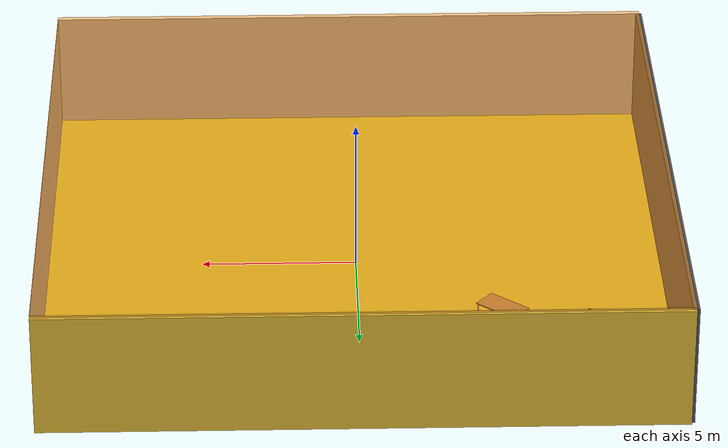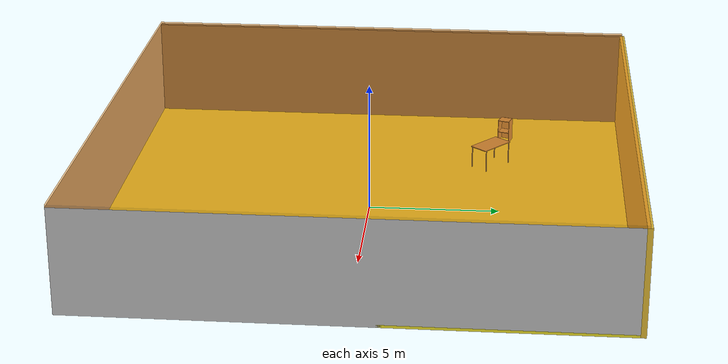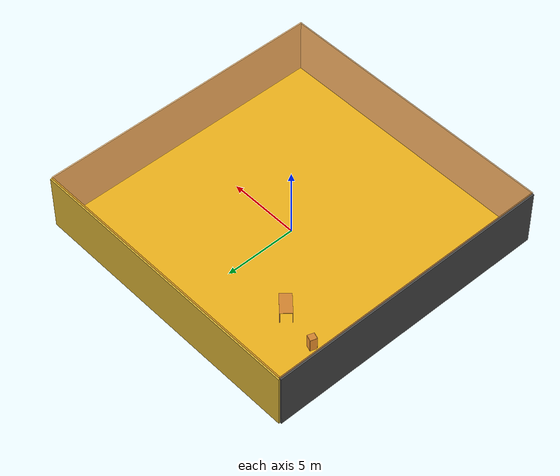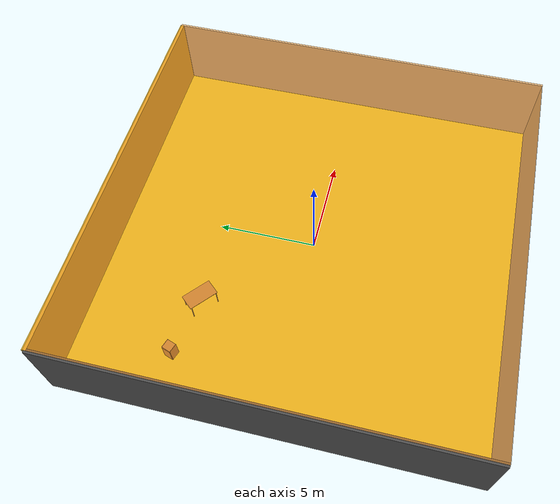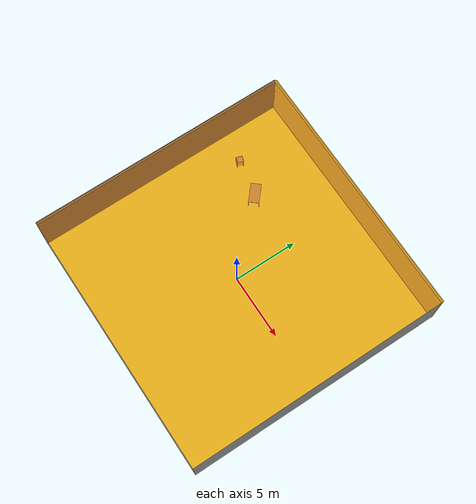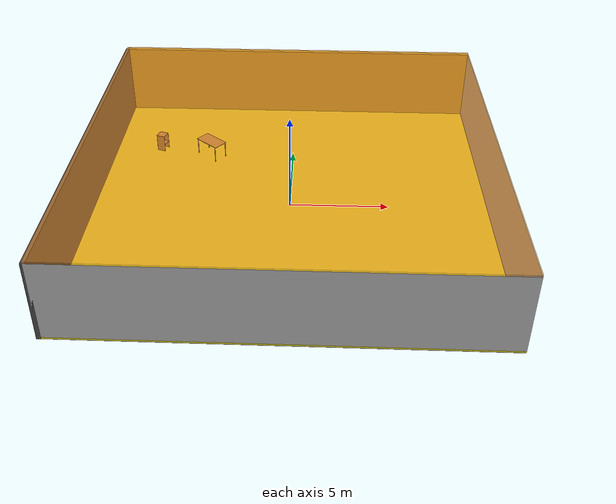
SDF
<sdf version="1.4">
 <world name="default">
  <physics type="ode">
   <max_step_size>0.001</max_step_size>
   <real_time_factor>1</real_time_factor>
   <real_time_update_rate>1000</real_time_update_rate>
   <gravity>0 0 -9.8</gravity>
  </physics>
  <scene><ambient>0.4 0.4 0.4 1</ambient><background>0.7 0.7 0.7 1</background><shadows>1</shadows></scene>
  <model name="Surrounding">
   <static>1</static>
   <link name="Ceiling">
    <collision name="Ceiling_Collision"><geometry><box><size>20 20 0.1</size></box></geometry></collision>
    <visual name="Ceiling_Visual">
     <geometry><box><size>20 20 0.1</size></box></geometry>
     <material>
      <script>
       <uri>file://media/materials/scripts/gazebo.material</uri>
       <name>Gazebo/OrangeTransparent</name>
      </script>
     </material>
    </visual>
    <pose>0 0 4.05 0 0 0</pose>
   </link>
   <link name="Wall_South">
    <collision name="Wall_South_Collision">
     <geometry><box><size>20 0 4</size></box></geometry>
     <pose>0 0 2 0 -0 0</pose>
    </collision>
    <visual name="Wall_South_Visual">
     <pose>0 0 2 0 -0 0</pose>
     <geometry><box><size>20 0 4</size></box></geometry>
     <material>
      <script><uri>file://media/materials/scripts/gazebo.material</uri><name>Gazebo/LightOff</name></script>
     </material>
    </visual>
    <velocity_decay><linear>0</linear><angular>0</angular></velocity_decay>
    <pose>0 -10 0 0 -0 0</pose>
   </link>
   <link name="Wall_East">
    <collision name="Wall_21_Collision">
     <geometry><box><size>20 0 4</size></box></geometry>
     <pose>0 0 2 0 -0 0</pose>
    </collision>
    <visual name="Wall_21_Visual">
     <pose>0 0 2 0 -0 0</pose>
     <geometry><box><size>20 0 4</size></box></geometry>
     <material>
      <script><uri>file://media/materials/scripts/gazebo.material</uri><name>Gazebo/CloudySky</name></script>
     </material>
    </visual>
    <velocity_decay><linear>0</linear><angular>0</angular></velocity_decay>
    <pose>10 0 0 0 -0 1.5708</pose>
   </link>
   <link name="Wall_North">
    <collision name="Wall_22_Collision">
     <geometry><box><size>20 0.2 4</size></box></geometry>
     <pose>0 0 2 0 -0 0</pose>
    </collision>
    <visual name="Wall_22_Visual">
     <pose>0 0 2 0 -0 0</pose>
     <geometry><box><size>20 0.2 4</size></box></geometry>
     <material>
      <script><uri>file://media/materials/scripts/gazebo.material</uri><name>Gazebo/Gold</name></script>
     </material>
    </visual>
    <velocity_decay><linear>0</linear><angular>0</angular></velocity_decay>
    <pose>0 10 0 0 -0 0</pose>
   </link>
   <link name="Wall_West">
    <collision name="Wall_23_Collision">
     <geometry><box><size>20 0.2 4</size></box></geometry>
     <pose>0 0 2 0 -0 0</pose>
    </collision>
    <visual name="Wall_23_Visual">
     <pose>0 0 2 0 -0 0</pose>
     <geometry><box><size>20 0.2 4</size></box></geometry>
     <material>
      <script><uri>file://media/materials/scripts/gazebo.material</uri><name>Gazebo/DarkGrey</name></script>
     </material>
    </visual>
    <velocity_decay><linear>0</linear><angular>0</angular></velocity_decay>
    <pose>-10 0 0 0 0 -1.5708</pose>
   </link>
   <link name="Ground_link">
    <collision name="collision">
     <pose>0 0 .05 0 -0 0</pose>
     <geometry><box><size>20 20 0.1</size></box></geometry>
    </collision>
    <visual name="visual">
     <pose>0 0 .05 0 -0 0</pose>
     <geometry><box><size>20 20 0.1</size></box></geometry>
     <material>
      <script><uri>file://media/materials/scripts/gazebo.material</uri><name>Gazebo/YellowGlow</name></script>
     </material>
    </visual>
   </link>
   <static>1</static>
  </model>
  <spherical_coordinates>
   <surface_model>EARTH_WGS84</surface_model>
   <latitude_deg>0</latitude_deg>
   <longitude_deg>0</longitude_deg>
   <elevation>0</elevation>
   <heading_deg>0</heading_deg>
  </spherical_coordinates>
  <light name="lightball_0" type="diffuse">
   <diffuse>0.8 0.8 0.8 1</diffuse>
   <specular>0.2 0.2 0.2 1</specular>
   <attenuation>
    <range>100</range>
    <constant>0.7</constant>
    <linear>0.01</linear>
    <quadratic>0.001</quadratic>
   </attenuation>
   <direction>-0.5 0.1 -0.9</direction>
   <pose>-0.18162357337 -0.222132280653 1.1558756774 0 0 0</pose>
  </light>
  <light name="lightball_1" type="diffuse">
   <diffuse>0.8 0.8 0.8 1</diffuse>
   <specular>0.2 0.2 0.2 1</specular>
   <attenuation>
    <range>100</range>
    <constant>0.7</constant>
    <linear>0.01</linear>
    <quadratic>0.001</quadratic>
   </attenuation>
   <direction>-0.5 0.1 -0.9</direction>
   <pose>6.0699563189 -4.15776603743 2.34162812143 0 0 0</pose>
  </light>
  <light name="lightball_2" type="diffuse">
   <diffuse>0.8 0.8 0.8 1</diffuse>
   <specular>0.2 0.2 0.2 1</specular>
   <attenuation>
    <range>100</range>
    <constant>0.7</constant>
    <linear>0.01</linear>
    <quadratic>0.001</quadratic>
   </attenuation>
   <direction>-0.5 0.1 -0.9</direction>
   <pose>0.927389826242 -1.59906354024 2.24102409509 0 0 0</pose>
  </light>
  <light name="lightball_3" type="diffuse">
   <diffuse>0.8 0.8 0.8 1</diffuse>
   <specular>0.2 0.2 0.2 1</specular>
   <attenuation>
    <range>100</range>
    <constant>0.7</constant>
    <linear>0.01</linear>
    <quadratic>0.001</quadratic>
   </attenuation>
   <direction>-0.5 0.1 -0.9</direction>
   <pose>9.32550337554 5.5809438125 1.03757932581 0 0 0</pose>
  </light>
  <light name="lightball_4" type="diffuse">
   <diffuse>0.8 0.8 0.8 1</diffuse>
   <specular>0.2 0.2 0.2 1</specular>
   <attenuation>
    <range>100</range>
    <constant>0.7</constant>
    <linear>0.01</linear>
    <quadratic>0.001</quadratic>
   </attenuation>
   <direction>-0.5 0.1 -0.9</direction>
   <pose>-2.49574867559 -4.60579499989 2.9781182146 0 0 0</pose>
  </light>
  <light name="lightball_5" type="diffuse">
   <diffuse>0.8 0.8 0.8 1</diffuse>
   <specular>0.2 0.2 0.2 1</specular>
   <attenuation>
    <range>100</range>
    <constant>0.7</constant>
    <linear>0.01</linear>
    <quadratic>0.001</quadratic>
   </attenuation>
   <direction>-0.5 0.1 -0.9</direction>
   <pose>-1.50394877966 -3.04974304231 1.96341742155 0 0 0</pose>
  </light>
  <light name="lightball_6" type="diffuse">
   <diffuse>0.8 0.8 0.8 1</diffuse>
   <specular>0.2 0.2 0.2 1</specular>
   <attenuation>
    <range>100</range>
    <constant>0.7</constant>
    <linear>0.01</linear>
    <quadratic>0.001</quadratic>
   </attenuation>
   <direction>-0.5 0.1 -0.9</direction>
   <pose>-1.32065029856 0.0751662734123 0.882172731486 0 0 0</pose>
  </light>
  <light name="lightball_7" type="diffuse">
   <diffuse>0.8 0.8 0.8 1</diffuse>
   <specular>0.2 0.2 0.2 1</specular>
   <attenuation>
    <range>100</range>
    <constant>0.7</constant>
    <linear>0.01</linear>
    <quadratic>0.001</quadratic>
   </attenuation>
   <direction>-0.5 0.1 -0.9</direction>
   <pose>-3.57836111181 3.5404184015 2.98717729915 0 0 0</pose>
  </light>
  <include><uri>model://cabinet</uri><pose>-7.35599377502 5.14176647419 0 0 0 2.81997615714</pose></include>
  <include><uri>model://table</uri><pose>-4.52856460568 4.58145017764 0 0 0 2.43463717778</pose></include>
 </world>
</sdf>

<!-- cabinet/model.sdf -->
<sdf version="1.5">
  <model name="cabinet">
    <static>true</static>
    <link name="cabinet_bottom_plate">
      <inertial>
        <pose>0 0 -1 0 0 0</pose>
        <inertia>
          <ixx>2.050000</ixx>
          <ixy>0</ixy>
          <ixz>0</ixz>
          <iyy>2.050000</iyy>
          <iyz>0</iyz>
          <izz>2.050000</izz>
        </inertia>
        <mass>25.000000</mass>
      </inertial>
      <collision name="cabinet_bottom_plate_geom">
        <pose>0 0 0.010000 0 0 0</pose>
        <geometry>
          <box>
            <size>0.450000 0.450000 0.020000</size>
          </box>
        </geometry>
      </collision>
      <visual name="cabinet_bottom_plate_geom_visual">
        <pose>0 0 0.010000 0 0 0</pose>
        <geometry>
          <box>
            <size>0.450000 0.450000 0.020000</size>
          </box>
        </geometry>
        <material>
          <script>
            <uri>model://media/materials/scripts/gazebo.material</uri>
            <name>Gazebo/Wood</name>
          </script>
        </material>
      </visual>
      <collision name="cabinet_bottom_plate_geom_cabinet_back_plate">
        <pose>0.235000 0 0.510000 0 0 0</pose>
        <geometry>
          <box>
            <size>0.020000 0.450000 1.020000</size>
          </box>
        </geometry>
      </collision>
      <visual name="cabinet_bottom_plate_geom_cabinet_back_plate_visual">
        <pose>0.235000 0 0.510000 0 0 0</pose>
        <geometry>
          <box>
            <size>0.020000 0.450000 1.020000</size>
          </box>
        </geometry>
        <material>
          <script>
            <uri>model://media/materials/scripts/gazebo.material</uri>
            <name>Gazebo/Wood</name>
          </script>
        </material>
      </visual>
      <collision name="cabinet_bottom_plate_geom_cabinet_left_plate">
        <pose>0 0.235000 0.510000 0 0 0</pose>
        <geometry>
          <box>
            <size>0.450000 0.020000 1.020000</size>
          </box>
        </geometry>
      </collision>
      <visual name="cabinet_bottom_plate_geom_cabinet_left_plate_visual">
        <pose>0 0.235000 0.510000 0 0 0</pose>
        <geometry>
          <box>
            <size>0.450000 0.020000 1.020000</size>
          </box>
        </geometry>
        <material>
          <script>
            <uri>model://media/materials/scripts/gazebo.material</uri>
            <name>Gazebo/Wood</name>
          </script>
        </material>
      </visual>
      <collision name="cabinet_bottom_plate_geom_cabinet_middle_plate">
        <pose>0 0 0.510000 0 0 0</pose>
        <geometry>
          <box>
            <size>0.450000 0.450000 0.020000</size>
          </box>
        </geometry>
      </collision>
      <visual name="cabinet_bottom_plate_geom_cabinet_middle_plate_visual">
        <pose>0 0 0.510000 0 0 0</pose>
        <geometry>
          <box>
            <size>0.450000 0.450000 0.020000</size>
          </box>
        </geometry>
        <material>
          <script>
            <uri>model://media/materials/scripts/gazebo.material</uri>
            <name>Gazebo/Wood</name>
          </script>
        </material>
      </visual>
      <collision name="cabinet_bottom_plate_geom_cabinet_right_plate">
        <pose>0 -0.235000 0.510000 0 0 0</pose>
        <geometry>
          <box>
            <size>0.450000 0.020000 1.020000</size>
          </box>
        </geometry>
      </collision>
      <visual name="cabinet_bottom_plate_geom_cabinet_right_plate_visual">
        <pose>0 -0.235000 0.510000 0 0 0</pose>
        <geometry>
          <box>
            <size>0.450000 0.020000 1.020000</size>
          </box>
        </geometry>
        <material>
          <script>
            <uri>model://media/materials/scripts/gazebo.material</uri>
            <name>Gazebo/Wood</name>
          </script>
        </material>
      </visual>
      <collision name="cabinet_bottom_plate_geom_cabinet_top_plate">
        <pose>0 0 1.010000 0 0 0</pose>
        <geometry>
          <box>
            <size>0.450000 0.450000 0.020000</size>
          </box>
        </geometry>
      </collision>
      <visual name="cabinet_bottom_plate_geom_cabinet_top_plate_visual">
        <pose>0 0 1.010000 0 0 0</pose>
        <geometry>
          <box>
            <size>0.450000 0.450000 0.020000</size>
          </box>
        </geometry>
        <material>
          <script>
            <uri>model://media/materials/scripts/gazebo.material</uri>
            <name>Gazebo/Wood</name>
          </script>
        </material>
      </visual>
    </link>
  </model>
</sdf>

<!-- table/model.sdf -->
<sdf version="1.5">
  <model name="table">
    <static>true</static>
    <link name="link">
      <collision name="surface">
        <pose>0 0 1.0 0 0 0</pose>
        <geometry>
          <box>
            <size>1.5 0.8 0.03</size>
          </box>
        </geometry>
        <surface>
          <friction>
            <ode>
              <mu>0.6</mu>
              <mu2>0.6</mu2>
            </ode>
          </friction>
        </surface>
      </collision>
      <visual name="visual1">
        <pose>0 0 1.0 0 0 0</pose>
        <geometry>
          <box>
            <size>1.5 0.8 0.03</size>
          </box>
        </geometry>
        <material>
          <script>
            <uri>model://media/materials/scripts/gazebo.material</uri>
            <name>Gazebo/Wood</name>
          </script>
        </material>
      </visual>
      <collision name="front_left_leg">
        <pose>0.68 0.38 0.5 0 0 0</pose>
        <geometry>
          <cylinder>
            <radius>0.02</radius>
            <length>1.0</length>
          </cylinder>
        </geometry>
      </collision>
      <visual name="front_left_leg">
        <pose>0.68 0.38 0.5 0 0 0</pose>
        <geometry>
          <cylinder>
            <radius>0.02</radius>
            <length>1.0</length>
          </cylinder>
        </geometry>
        <material>
          <script>
            <uri>model://media/materials/scripts/gazebo.material</uri>
            <name>Gazebo/Grey</name>
          </script>
        </material>
      </visual>
      <collision name="front_right_leg">
        <pose>0.68 -0.38 0.5 0 0 0</pose>
        <geometry>
          <cylinder>
            <radius>0.02</radius>
            <length>1.0</length>
          </cylinder>
        </geometry>
      </collision>
      <visual name="front_right_leg">
        <pose>0.68 -0.38 0.5 0 0 0</pose>
        <geometry>
          <cylinder>
            <radius>0.02</radius>
            <length>1.0</length>
          </cylinder>
        </geometry>
        <material>
          <script>
            <uri>model://media/materials/scripts/gazebo.material</uri>
            <name>Gazebo/Grey</name>
          </script>
        </material>
      </visual>
      <collision name="back_right_leg">
        <pose>-0.68 -0.38 0.5 0 0 0</pose>
        <geometry>
          <cylinder>
            <radius>0.02</radius>
            <length>1.0</length>
          </cylinder>
        </geometry>
      </collision>
      <visual name="back_right_leg">
        <pose>-0.68 -0.38 0.5 0 0 0</pose>
        <geometry>
          <cylinder>
            <radius>0.02</radius>
            <length>1.0</length>
          </cylinder>
        </geometry>
        <material>
          <script>
            <uri>model://media/materials/scripts/gazebo.material</uri>
            <name>Gazebo/Grey</name>
          </script>
        </material>
      </visual>
      <collision name="back_left_leg">
        <pose>-0.68 0.38 0.5 0 0 0</pose>
        <geometry>
          <cylinder>
            <radius>0.02</radius>
            <length>1.0</length>
          </cylinder>
        </geometry>
      </collision>
      <visual name="back_left_leg">
        <pose>-0.68 0.38 0.5 0 0 0</pose>
        <geometry>
          <cylinder>
            <radius>0.02</radius>
            <length>1.0</length>
          </cylinder>
        </geometry>
        <material>
          <script>
            <uri>model://media/materials/scripts/gazebo.material</uri>
            <name>Gazebo/Grey</name>
          </script>
        </material>
      </visual>
    </link>
  </model>
</sdf>
